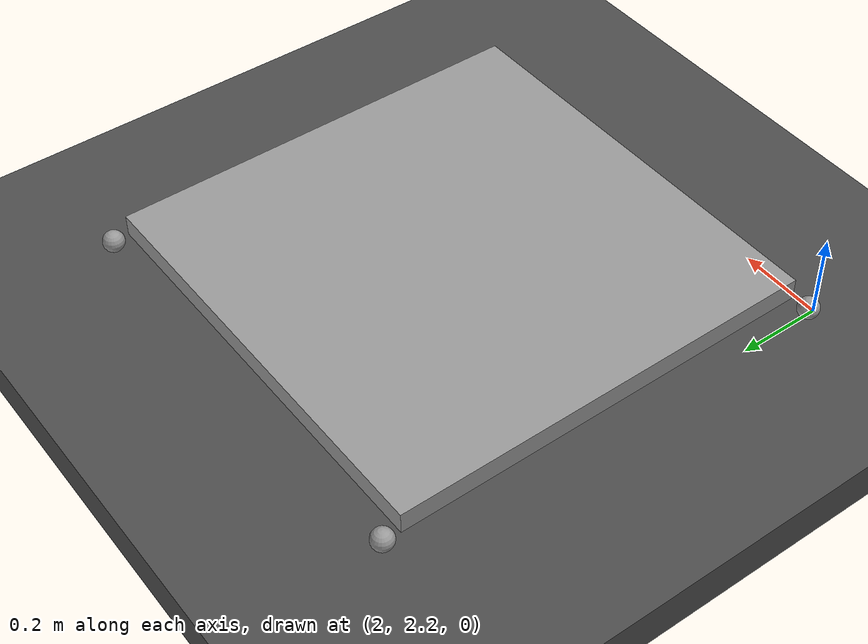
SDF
<sdf version="1.6">
 <world name="default">
  <model name="ground_plane">
   <static>1</static>
   <link name="link">
    <collision name="collision">
     <geometry><plane><normal>0 0 1</normal><size>100 100</size></plane></geometry>
     <surface>
      <contact><collide_bitmask>65535</collide_bitmask></contact>
      <friction><ode><mu>100</mu><mu2>50</mu2></ode></friction>
     </surface>
    </collision>
    <visual name="visual">
     <cast_shadows>0</cast_shadows>
     <geometry><plane><normal>0 0 1</normal><size>100 100</size></plane></geometry>
     <material>
      <script><uri>file://media/materials/scripts/gazebo.material</uri><name>Gazebo/Grey</name></script>
     </material>
    </visual>
   </link>
  </model>
  <model name="dolly">
   <link name="link_0">
    <inertial>
     <mass>0.580233</mass>
     <inertia>
      <ixx>0.0485156</ixx>
      <ixy>0</ixy>
      <ixz>0</ixz>
      <iyy>0.0485156</iyy>
      <iyz>0</iyz>
      <izz>0.0967055</izz>
     </inertia>
    </inertial>
    <pose>-0 0 0.05 0 -0 0</pose>
    <visual name="visual">
     <geometry><box><size>1 1 0.05</size></box></geometry>
     <material>
      <lighting>1</lighting>
      <script><uri>file://media/materials/scripts/gazebo.material</uri><name>Gazebo/Grey</name></script>
      <shader type="vertex"><normal_map>__default__</normal_map></shader>
      <ambient>0.3 0.3 0.3 1</ambient>
      <diffuse>0.9 0.9 0.9 1</diffuse>
      <specular>0.08 0.08 0.08 1</specular>
      <emissive>0 0 0 1</emissive>
     </material>
    </visual>
    <collision name="collision">
     <geometry><box><size>1 1 0.05</size></box></geometry>
     <surface>
      <friction>
       <ode><mu>1</mu><mu2>1</mu2><fdir1>0 0 0</fdir1><slip1>0</slip1><slip2>0</slip2></ode>
       <torsional>
        <coefficient>1</coefficient>
        <patch_radius>0</patch_radius>
        <surface_radius>0</surface_radius>
        <use_patch_radius>1</use_patch_radius>
        <ode><slip>0</slip></ode>
       </torsional>
      </friction>
      <bounce><restitution_coefficient>0</restitution_coefficient><threshold>1e+06</threshold></bounce>
      <contact>
       <collide_without_contact>0</collide_without_contact>
       <collide_without_contact_bitmask>1</collide_without_contact_bitmask>
       <collide_bitmask>1</collide_bitmask>
       <ode>
        <soft_cfm>0</soft_cfm>
        <soft_erp>0.2</soft_erp>
        <kp>1e+13</kp>
        <kd>1</kd>
        <max_vel>0.01</max_vel>
        <min_depth>0</min_depth>
       </ode>
       <bullet>
        <split_impulse>1</split_impulse>
        <split_impulse_penetration_threshold>-0.01</split_impulse_penetration_threshold>
        <soft_cfm>0</soft_cfm>
        <soft_erp>0.2</soft_erp>
        <kp>1e+13</kp>
        <kd>1</kd>
       </bullet>
      </contact>
     </surface>
    </collision>
   </link>
   <link name="link_0_0">
    <inertial>
     <mass>1</mass>
     <inertia><ixx>0.1</ixx><ixy>0</ixy><ixz>0</ixz><iyy>0.1</iyy><iyz>0</iyz><izz>0.1</izz></inertia>
    </inertial>
    <pose>-0.475902 0.525156 0 0 -0 0</pose>
    <visual name="visual">
     <geometry><sphere><radius>0.025</radius></sphere></geometry>
     <material>
      <lighting>1</lighting>
      <script><uri>file://media/materials/scripts/gazebo.material</uri><name>Gazebo/Grey</name></script>
      <shader type="vertex"><normal_map>__default__</normal_map></shader>
      <ambient>0.3 0.3 0.3 1</ambient>
      <diffuse>0.7 0.7 0.7 1</diffuse>
      <specular>0.01 0.01 0.01 1</specular>
      <emissive>0 0 0 1</emissive>
     </material>
    </visual>
    <collision name="collision">
     <geometry><sphere><radius>0.025</radius></sphere></geometry>
     <surface>
      <friction>
       <ode><mu>1</mu><mu2>1</mu2><fdir1>0 0 0</fdir1><slip1>0</slip1><slip2>0</slip2></ode>
       <torsional>
        <coefficient>1</coefficient>
        <patch_radius>0</patch_radius>
        <surface_radius>0</surface_radius>
        <use_patch_radius>1</use_patch_radius>
        <ode><slip>0</slip></ode>
       </torsional>
      </friction>
      <bounce><restitution_coefficient>0</restitution_coefficient><threshold>1e+06</threshold></bounce>
      <contact>
       <collide_without_contact>0</collide_without_contact>
       <collide_without_contact_bitmask>1</collide_without_contact_bitmask>
       <collide_bitmask>1</collide_bitmask>
       <ode>
        <soft_cfm>0</soft_cfm>
        <soft_erp>0.2</soft_erp>
        <kp>1e+13</kp>
        <kd>1</kd>
        <max_vel>0.01</max_vel>
        <min_depth>0</min_depth>
       </ode>
       <bullet>
        <split_impulse>1</split_impulse>
        <split_impulse_penetration_threshold>-0.01</split_impulse_penetration_threshold>
        <soft_cfm>0</soft_cfm>
        <soft_erp>0.2</soft_erp>
        <kp>1e+13</kp>
        <kd>1</kd>
       </bullet>
      </contact>
     </surface>
    </collision>
   </link>
   <link name="link_0_0_clone">
    <inertial>
     <mass>1</mass>
     <inertia><ixx>0.1</ixx><ixy>0</ixy><ixz>0</ixz><iyy>0.1</iyy><iyz>0</iyz><izz>0.1</izz></inertia>
    </inertial>
    <pose>0.524976 0.525931 -1.1e-05 3.7e-05 1.2e-05 0.000901</pose>
    <visual name="visual_0">
     <geometry><sphere><radius>0.025</radius></sphere></geometry>
     <material>
      <lighting>1</lighting>
      <script><uri>file://media/materials/scripts/gazebo.material</uri><name>Gazebo/Grey</name></script>
      <shader type="vertex"><normal_map>__default__</normal_map></shader>
      <ambient>0.3 0.3 0.3 1</ambient>
      <diffuse>0.7 0.7 0.7 1</diffuse>
      <specular>0.01 0.01 0.01 1</specular>
      <emissive>0 0 0 1</emissive>
     </material>
    </visual>
    <collision name="collision">
     <geometry><sphere><radius>0.025</radius></sphere></geometry>
     <surface>
      <friction>
       <ode><mu>1</mu><mu2>1</mu2><fdir1>0 0 0</fdir1><slip1>0</slip1><slip2>0</slip2></ode>
       <torsional>
        <coefficient>1</coefficient>
        <patch_radius>0</patch_radius>
        <surface_radius>0</surface_radius>
        <use_patch_radius>1</use_patch_radius>
        <ode><slip>0</slip></ode>
       </torsional>
      </friction>
      <bounce><restitution_coefficient>0</restitution_coefficient><threshold>1e+06</threshold></bounce>
      <contact>
       <collide_without_contact>0</collide_without_contact>
       <collide_without_contact_bitmask>1</collide_without_contact_bitmask>
       <collide_bitmask>1</collide_bitmask>
       <ode>
        <soft_cfm>0</soft_cfm>
        <soft_erp>0.2</soft_erp>
        <kp>1e+13</kp>
        <kd>1</kd>
        <max_vel>0.01</max_vel>
        <min_depth>0</min_depth>
       </ode>
       <bullet>
        <split_impulse>1</split_impulse>
        <split_impulse_penetration_threshold>-0.01</split_impulse_penetration_threshold>
        <soft_cfm>0</soft_cfm>
        <soft_erp>0.2</soft_erp>
        <kp>1e+13</kp>
        <kd>1</kd>
       </bullet>
      </contact>
     </surface>
    </collision>
   </link>
   <link name="link_0_0_clone_clone">
    <inertial>
     <mass>1</mass>
     <inertia><ixx>0.1</ixx><ixy>0</ixy><ixz>0</ixz><iyy>0.1</iyy><iyz>0</iyz><izz>0.1</izz></inertia>
    </inertial>
    <pose>0.525946 -0.524999 -5.1e-05 7.4e-05 2.4e-05 0.001802</pose>
    <visual name="visual_0">
     <geometry><sphere><radius>0.025</radius></sphere></geometry>
     <material>
      <lighting>1</lighting>
      <script><uri>file://media/materials/scripts/gazebo.material</uri><name>Gazebo/Grey</name></script>
      <shader type="vertex"><normal_map>__default__</normal_map></shader>
      <ambient>0.3 0.3 0.3 1</ambient>
      <diffuse>0.7 0.7 0.7 1</diffuse>
      <specular>0.01 0.01 0.01 1</specular>
      <emissive>0 0 0 1</emissive>
     </material>
    </visual>
    <collision name="collision">
     <geometry><sphere><radius>0.025</radius></sphere></geometry>
     <surface>
      <friction>
       <ode><mu>1</mu><mu2>1</mu2><fdir1>0 0 0</fdir1><slip1>0</slip1><slip2>0</slip2></ode>
       <torsional>
        <coefficient>1</coefficient>
        <patch_radius>0</patch_radius>
        <surface_radius>0</surface_radius>
        <use_patch_radius>1</use_patch_radius>
        <ode><slip>0</slip></ode>
       </torsional>
      </friction>
      <bounce><restitution_coefficient>0</restitution_coefficient><threshold>1e+06</threshold></bounce>
      <contact>
       <collide_without_contact>0</collide_without_contact>
       <collide_without_contact_bitmask>1</collide_without_contact_bitmask>
       <collide_bitmask>1</collide_bitmask>
       <ode>
        <soft_cfm>0</soft_cfm>
        <soft_erp>0.2</soft_erp>
        <kp>1e+13</kp>
        <kd>1</kd>
        <max_vel>0.01</max_vel>
        <min_depth>0</min_depth>
       </ode>
       <bullet>
        <split_impulse>1</split_impulse>
        <split_impulse_penetration_threshold>-0.01</split_impulse_penetration_threshold>
        <soft_cfm>0</soft_cfm>
        <soft_erp>0.2</soft_erp>
        <kp>1e+13</kp>
        <kd>1</kd>
       </bullet>
      </contact>
     </surface>
    </collision>
   </link>
   <link name="link_0_0_clone_clone_clone">
    <inertial>
     <mass>1</mass>
     <inertia><ixx>0.1</ixx><ixy>0</ixy><ixz>0</ixz><iyy>0.1</iyy><iyz>0</iyz><izz>0.1</izz></inertia>
    </inertial>
    <pose>-0.525024 -0.52597 -4e-05 0.000111 3.5e-05 0.002703</pose>
    <visual name="visual_0">
     <geometry><sphere><radius>0.025</radius></sphere></geometry>
     <material>
      <lighting>1</lighting>
      <script><uri>file://media/materials/scripts/gazebo.material</uri><name>Gazebo/Grey</name></script>
      <shader type="vertex"><normal_map>__default__</normal_map></shader>
      <ambient>0.3 0.3 0.3 1</ambient>
      <diffuse>0.7 0.7 0.7 1</diffuse>
      <specular>0.01 0.01 0.01 1</specular>
      <emissive>0 0 0 1</emissive>
     </material>
    </visual>
    <collision name="collision">
     <geometry><sphere><radius>0.025</radius></sphere></geometry>
     <surface>
      <friction>
       <ode><mu>1</mu><mu2>1</mu2><fdir1>0 0 0</fdir1><slip1>0</slip1><slip2>0</slip2></ode>
       <torsional>
        <coefficient>1</coefficient>
        <patch_radius>0</patch_radius>
        <surface_radius>0</surface_radius>
        <use_patch_radius>1</use_patch_radius>
        <ode><slip>0</slip></ode>
       </torsional>
      </friction>
      <bounce><restitution_coefficient>0</restitution_coefficient><threshold>1e+06</threshold></bounce>
      <contact>
       <collide_without_contact>0</collide_without_contact>
       <collide_without_contact_bitmask>1</collide_without_contact_bitmask>
       <collide_bitmask>1</collide_bitmask>
       <ode>
        <soft_cfm>0</soft_cfm>
        <soft_erp>0.2</soft_erp>
        <kp>1e+13</kp>
        <kd>1</kd>
        <max_vel>0.01</max_vel>
        <min_depth>0</min_depth>
       </ode>
       <bullet>
        <split_impulse>1</split_impulse>
        <split_impulse_penetration_threshold>-0.01</split_impulse_penetration_threshold>
        <soft_cfm>0</soft_cfm>
        <soft_erp>0.2</soft_erp>
        <kp>1e+13</kp>
        <kd>1</kd>
       </bullet>
      </contact>
     </surface>
    </collision>
   </link>
   <joint name="link_0_JOINT_1" type="ball">
    <parent>link_0</parent>
    <child>link_0_0</child>
    <physics>
     <ode><limit><cfm>0</cfm><erp>0.2</erp></limit><suspension><cfm>0</cfm><erp>0.2</erp></suspension></ode>
    </physics>
   </joint>
   <joint name="link_0_JOINT_2" type="revolute">
    <parent>link_0</parent>
    <child>link_0_0_clone</child>
    <axis>
     <xyz>1 0 0</xyz>
     <use_parent_model_frame>0</use_parent_model_frame>
     <limit>
      <lower>-1.79769e+308</lower>
      <upper>1.79769e+308</upper>
      <effort>-1</effort>
      <velocity>-1</velocity>
     </limit>
     <dynamics>
      <spring_reference>0</spring_reference>
      <spring_stiffness>0</spring_stiffness>
      <damping>0</damping>
     </dynamics>
    </axis>
    <physics>
     <ode><limit><cfm>0</cfm><erp>0.2</erp></limit><suspension><cfm>0</cfm><erp>0.2</erp></suspension></ode>
    </physics>
   </joint>
   <joint name="link_0_JOINT_3" type="revolute">
    <parent>link_0</parent>
    <child>link_0_0_clone_clone</child>
    <axis>
     <xyz>1 0 0</xyz>
     <use_parent_model_frame>0</use_parent_model_frame>
     <limit>
      <lower>-1.79769e+308</lower>
      <upper>1.79769e+308</upper>
      <effort>-1</effort>
      <velocity>-1</velocity>
     </limit>
     <dynamics>
      <spring_reference>0</spring_reference>
      <spring_stiffness>0</spring_stiffness>
      <damping>0</damping>
     </dynamics>
    </axis>
    <physics>
     <ode><limit><cfm>0</cfm><erp>0.2</erp></limit><suspension><cfm>0</cfm><erp>0.2</erp></suspension></ode>
    </physics>
   </joint>
   <joint name="link_0_JOINT_4" type="revolute">
    <parent>link_0</parent>
    <child>link_0_0_clone_clone_clone</child>
    <axis>
     <xyz>1 0 0</xyz>
     <use_parent_model_frame>0</use_parent_model_frame>
     <limit>
      <lower>-1.79769e+308</lower>
      <upper>1.79769e+308</upper>
      <effort>-1</effort>
      <velocity>-1</velocity>
     </limit>
     <dynamics>
      <spring_reference>0</spring_reference>
      <spring_stiffness>0</spring_stiffness>
      <damping>0</damping>
     </dynamics>
    </axis>
    <physics>
     <ode><limit><cfm>0</cfm><erp>0.2</erp></limit><suspension><cfm>0</cfm><erp>0.2</erp></suspension></ode>
    </physics>
   </joint>
   <static>0</static>
   <pose>2.48886 2.79179 0.075025 -3.8e-05 -1.1e-05 0.005109</pose>
  </model>
  <model name="asphalt_plane">
   <static>1</static>
   <link name="link">
    <collision name="collision"><geometry><box><size>20 23.3157 0.1</size></box></geometry></collision>
    <visual name="visual">
     <cast_shadows>0</cast_shadows>
     <geometry><box><size>20 23.3157 0.1</size></box></geometry>
     <material>
      <script>
       <uri>model://asphalt_plane/materials/scripts</uri>
       <uri>model://asphalt_plane/materials/textures</uri>
       <name>vrc/asphalt</name>
      </script>
     </material>
    </visual>
   </link>
   <pose>0.082168 -0.989597 0 0 -0 0</pose>
  </model>
 </world>
</sdf>
